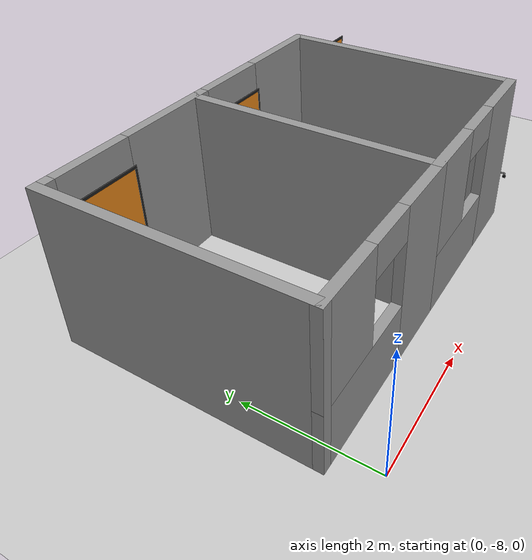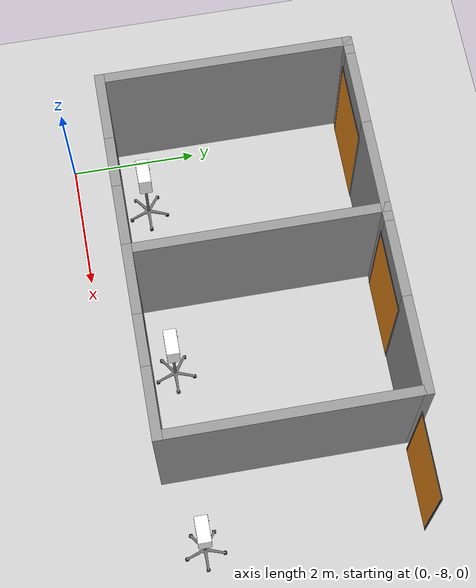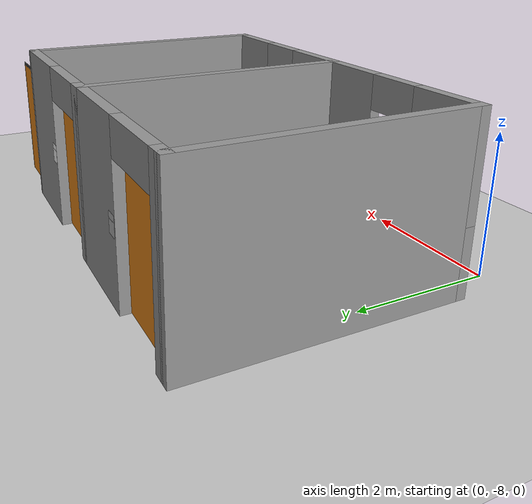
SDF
<sdf version="1.6">
 <world name="default">
  <model name="ground_plane">
   <static>1</static>
   <link name="link">
    <collision name="collision">
     <geometry><plane><normal>0 0 1</normal><size>100 100</size></plane></geometry>
     <surface><friction><ode><mu>100</mu><mu2>50</mu2></ode></friction></surface>
    </collision>
    <visual name="visual">
     <cast_shadows>0</cast_shadows>
     <geometry><plane><normal>0 0 1</normal><size>100 100</size></plane></geometry>
     <material>
      <script><uri>file://media/materials/scripts/gazebo.material</uri><name>Gazebo/Grey</name></script>
     </material>
    </visual>
   </link>
  </model>
  <model name="vitals_monitor_clone">
   <static>1</static>
   <link name="vitals_monitor">
    <collision name="vitals_monitor">
     <geometry><mesh><uri>model://vitals_monitor/meshes/model.dae</uri></mesh></geometry>
    </collision>
    <visual name="vitals_monitor_mesh">
     <geometry><mesh><uri>model://vitals_monitor/meshes/model.dae</uri></mesh></geometry>
    </visual>
   </link>
   <pose>6.64162 -6.89863 0 0 -0 3.14159</pose>
  </model>
  <model name="vitals_monitor_clone_0">
   <static>1</static>
   <link name="vitals_monitor">
    <collision name="vitals_monitor">
     <geometry><mesh><uri>model://vitals_monitor/meshes/model.dae</uri></mesh></geometry>
    </collision>
    <visual name="vitals_monitor_mesh">
     <geometry><mesh><uri>model://vitals_monitor/meshes/model.dae</uri></mesh></geometry>
    </visual>
   </link>
   <pose>3.79191 -6.89962 0 0 -0 3.14159</pose>
  </model>
  <model name="vitals_monitor_clone_1">
   <static>1</static>
   <link name="vitals_monitor">
    <collision name="vitals_monitor">
     <geometry><mesh><uri>model://vitals_monitor/meshes/model.dae</uri></mesh></geometry>
    </collision>
    <visual name="vitals_monitor_mesh">
     <geometry><mesh><uri>model://vitals_monitor/meshes/model.dae</uri></mesh></geometry>
    </visual>
   </link>
   <pose>0.94132 -6.89183 0 0 -0 3.14159</pose>
  </model>
  <model name="room_door_3">
   <link name="base_link">
    <inertial>
     <pose>0 0 1.00051 0 -0 0</pose>
     <mass>2001</mass>
     <inertia><ixx>797.85</ixx><ixy>0</ixy><ixz>0</ixz><iyy>4.0501</iyy><iyz>0</iyz><izz>796.8</izz></inertia>
    </inertial>
    <collision name="base_link_fixed_joint_lump__top_post_collision">
     <pose>0 0 2.025 0 -0 0</pose>
     <geometry><box><size>0.01 1.3 0.05</size></box></geometry>
    </collision>
    <collision name="base_link_fixed_joint_lump__left_post_collision_1">
     <pose>0 -0.63 1 0 -0 0</pose>
     <geometry><box><size>0.01 0.04 2</size></box></geometry>
    </collision>
    <collision name="base_link_fixed_joint_lump__right_post_collision_2">
     <pose>0 0.63 1 0 -0 0</pose>
     <geometry><box><size>0.01 0.04 2</size></box></geometry>
    </collision>
    <visual name="base_link_fixed_joint_lump__top_post_visual">
     <pose>0 0 2.025 0 -0 0</pose>
     <geometry><box><size>0.01 1.3 0.05</size></box></geometry>
     <material>
      <script><name>Gazebo/Black</name><uri>file://media/materials/scripts/gazebo.material</uri></script>
     </material>
    </visual>
    <visual name="base_link_fixed_joint_lump__left_post_visual_1">
     <pose>0 -0.63 1 0 -0 0</pose>
     <geometry><box><size>0.01 0.04 2</size></box></geometry>
     <material>
      <script><name>Gazebo/Black</name><uri>file://media/materials/scripts/gazebo.material</uri></script>
     </material>
    </visual>
    <visual name="base_link_fixed_joint_lump__right_post_visual_2">
     <pose>0 0.63 1 0 -0 0</pose>
     <geometry><box><size>0.01 0.04 2</size></box></geometry>
     <material>
      <script><name>Gazebo/Black</name><uri>file://media/materials/scripts/gazebo.material</uri></script>
     </material>
    </visual>
   </link>
   <link name="door_front">
    <pose>0.005 -0.61 1 0 -0 0</pose>
    <inertial>
     <mass>1</mass>
     <inertia><ixx>1</ixx><ixy>0</ixy><ixz>0</ixz><iyy>1</iyy><iyz>0</iyz><izz>1</izz></inertia>
    </inertial>
    <collision name="door_front_collision">
     <pose>-0.005 0.61 0.005 0 -0 0</pose>
     <geometry><box><size>0.01 1.22 1.99</size></box></geometry>
    </collision>
    <visual name="door_front_visual">
     <pose>-0.005 0.61 0.005 0 -0 0</pose>
     <geometry><box><size>0.01 1.22 1.99</size></box></geometry>
     <material>
      <script><name>Gazebo/Orange</name><uri>file://media/materials/scripts/gazebo.material</uri></script>
     </material>
    </visual>
   </link>
   <joint name="door_front_to_left_post" type="revolute">
    <child>door_front</child>
    <parent>base_link</parent>
    <axis>
     <xyz>0 0 1</xyz>
     <limit><lower>-3.14</lower><upper>0</upper><effort>1000</effort><velocity>100</velocity></limit>
     <dynamics>
      <damping>0.5</damping>
      <friction>0</friction>
      <spring_reference>0</spring_reference>
      <spring_stiffness>0</spring_stiffness>
     </dynamics>
     <use_parent_model_frame>0</use_parent_model_frame>
    </axis>
   </joint>
   <pose>0.553159 -3.55062 -1e-06 -1e-06 -0 -1.57102</pose>
  </model>
  <model name="room_door_3_clone">
   <link name="base_link">
    <inertial>
     <pose>0 0 1.00051 0 -0 0</pose>
     <mass>2001</mass>
     <inertia><ixx>797.85</ixx><ixy>0</ixy><ixz>0</ixz><iyy>4.0501</iyy><iyz>0</iyz><izz>796.8</izz></inertia>
    </inertial>
    <collision name="base_link_fixed_joint_lump__top_post_collision">
     <pose>0 0 2.025 0 -0 0</pose>
     <geometry><box><size>0.01 1.3 0.05</size></box></geometry>
    </collision>
    <collision name="base_link_fixed_joint_lump__left_post_collision_1">
     <pose>0 -0.63 1 0 -0 0</pose>
     <geometry><box><size>0.01 0.04 2</size></box></geometry>
    </collision>
    <collision name="base_link_fixed_joint_lump__right_post_collision_2">
     <pose>0 0.63 1 0 -0 0</pose>
     <geometry><box><size>0.01 0.04 2</size></box></geometry>
    </collision>
    <visual name="base_link_fixed_joint_lump__top_post_visual">
     <pose>0 0 2.025 0 -0 0</pose>
     <geometry><box><size>0.01 1.3 0.05</size></box></geometry>
     <material>
      <script><name>Gazebo/Black</name><uri>file://media/materials/scripts/gazebo.material</uri></script>
     </material>
    </visual>
    <visual name="base_link_fixed_joint_lump__left_post_visual_1">
     <pose>0 -0.63 1 0 -0 0</pose>
     <geometry><box><size>0.01 0.04 2</size></box></geometry>
     <material>
      <script><name>Gazebo/Black</name><uri>file://media/materials/scripts/gazebo.material</uri></script>
     </material>
    </visual>
    <visual name="base_link_fixed_joint_lump__right_post_visual_2">
     <pose>0 0.63 1 0 -0 0</pose>
     <geometry><box><size>0.01 0.04 2</size></box></geometry>
     <material>
      <script><name>Gazebo/Black</name><uri>file://media/materials/scripts/gazebo.material</uri></script>
     </material>
    </visual>
   </link>
   <link name="door_front">
    <pose>0.005 -0.61 1 0 -0 0</pose>
    <inertial>
     <mass>1</mass>
     <inertia><ixx>1</ixx><ixy>0</ixy><ixz>0</ixz><iyy>1</iyy><iyz>0</iyz><izz>1</izz></inertia>
    </inertial>
    <collision name="door_front_collision">
     <pose>-0.005 0.61 0.005 0 -0 0</pose>
     <geometry><box><size>0.01 1.22 1.99</size></box></geometry>
    </collision>
    <visual name="door_front_visual">
     <pose>-0.005 0.61 0.005 0 -0 0</pose>
     <geometry><box><size>0.01 1.22 1.99</size></box></geometry>
     <material>
      <script><name>Gazebo/Orange</name><uri>file://media/materials/scripts/gazebo.material</uri></script>
     </material>
    </visual>
   </link>
   <joint name="door_front_to_left_post" type="revolute">
    <child>door_front</child>
    <parent>base_link</parent>
    <axis>
     <xyz>0 0 1</xyz>
     <limit><lower>-3.14</lower><upper>0</upper><effort>1000</effort><velocity>100</velocity></limit>
     <dynamics>
      <damping>0.5</damping>
      <friction>0</friction>
      <spring_reference>0</spring_reference>
      <spring_stiffness>0</spring_stiffness>
     </dynamics>
     <use_parent_model_frame>0</use_parent_model_frame>
    </axis>
   </joint>
   <pose>3.41388 -3.55031 -1e-06 1e-06 -0 -1.5708</pose>
  </model>
  <model name="room_door_3_clone_clone">
   <link name="base_link">
    <inertial>
     <pose>0 0 1.00051 0 -0 0</pose>
     <mass>2001</mass>
     <inertia><ixx>797.85</ixx><ixy>0</ixy><ixz>0</ixz><iyy>4.0501</iyy><iyz>0</iyz><izz>796.8</izz></inertia>
    </inertial>
    <collision name="base_link_fixed_joint_lump__top_post_collision">
     <pose>0 0 2.025 0 -0 0</pose>
     <geometry><box><size>0.01 1.3 0.05</size></box></geometry>
    </collision>
    <collision name="base_link_fixed_joint_lump__left_post_collision_1">
     <pose>0 -0.63 1 0 -0 0</pose>
     <geometry><box><size>0.01 0.04 2</size></box></geometry>
    </collision>
    <collision name="base_link_fixed_joint_lump__right_post_collision_2">
     <pose>0 0.63 1 0 -0 0</pose>
     <geometry><box><size>0.01 0.04 2</size></box></geometry>
    </collision>
    <visual name="base_link_fixed_joint_lump__top_post_visual">
     <pose>0 0 2.025 0 -0 0</pose>
     <geometry><box><size>0.01 1.3 0.05</size></box></geometry>
     <material>
      <script><name>Gazebo/Black</name><uri>file://media/materials/scripts/gazebo.material</uri></script>
     </material>
    </visual>
    <visual name="base_link_fixed_joint_lump__left_post_visual_1">
     <pose>0 -0.63 1 0 -0 0</pose>
     <geometry><box><size>0.01 0.04 2</size></box></geometry>
     <material>
      <script><name>Gazebo/Black</name><uri>file://media/materials/scripts/gazebo.material</uri></script>
     </material>
    </visual>
    <visual name="base_link_fixed_joint_lump__right_post_visual_2">
     <pose>0 0.63 1 0 -0 0</pose>
     <geometry><box><size>0.01 0.04 2</size></box></geometry>
     <material>
      <script><name>Gazebo/Black</name><uri>file://media/materials/scripts/gazebo.material</uri></script>
     </material>
    </visual>
   </link>
   <link name="door_front">
    <pose>0.005 -0.61 1 0 -0 0</pose>
    <inertial>
     <mass>1</mass>
     <inertia><ixx>1</ixx><ixy>0</ixy><ixz>0</ixz><iyy>1</iyy><iyz>0</iyz><izz>1</izz></inertia>
    </inertial>
    <collision name="door_front_collision">
     <pose>-0.005 0.61 0.005 0 -0 0</pose>
     <geometry><box><size>0.01 1.22 1.99</size></box></geometry>
    </collision>
    <visual name="door_front_visual">
     <pose>-0.005 0.61 0.005 0 -0 0</pose>
     <geometry><box><size>0.01 1.22 1.99</size></box></geometry>
     <material>
      <script><name>Gazebo/Orange</name><uri>file://media/materials/scripts/gazebo.material</uri></script>
     </material>
    </visual>
   </link>
   <joint name="door_front_to_left_post" type="revolute">
    <child>door_front</child>
    <parent>base_link</parent>
    <axis>
     <xyz>0 0 1</xyz>
     <limit><lower>-3.14</lower><upper>0</upper><effort>1000</effort><velocity>100</velocity></limit>
     <dynamics>
      <damping>0.5</damping>
      <friction>0</friction>
      <spring_reference>0</spring_reference>
      <spring_stiffness>0</spring_stiffness>
     </dynamics>
     <use_parent_model_frame>0</use_parent_model_frame>
    </axis>
   </joint>
   <pose>6.26096 -3.5504 -2e-06 4e-06 -7e-06 -1.57077</pose>
  </model>
  <model name="info_plate">
   <static>1</static>
   <link name="info_plate">
    <collision name="info_plate">
     <pose>0 0 0.1485 0 -0 0</pose>
     <geometry><box><size>0.001 0.21 0.297</size></box></geometry>
    </collision>
    <visual name="info_plate_upper">
     <pose>0 0 0.2485 0 -0 0</pose>
     <geometry><box><size>0.001 0.21 0.097</size></box></geometry>
     <material>
      <script>
       <uri>model://info_plate/materials/scripts</uri>
       <uri>model://info_plate/materials/textures</uri>
       <name>Room/S1</name>
       <name>__default__</name>
      </script>
     </material>
    </visual>
    <visual name="info_plate_lower">
     <pose>0 0 0.105 0 -0 0</pose>
     <geometry><box><size>0.001 0.21 0.21</size></box></geometry>
     <material>
      <script>
       <uri>model://info_plate/materials/scripts</uri>
       <uri>model://info_plate/materials/textures</uri>
       <name>QR_Room/S1</name>
      </script>
     </material>
    </visual>
   </link>
   <pose>1.29234 -3.395 1 0 -0 1.57</pose>
  </model>
  <model name="info_plate_clone">
   <link name="info_plate">
    <inertial>
     <mass>1</mass>
     <inertia><ixx>1</ixx><ixy>0</ixy><ixz>0</ixz><iyy>1</iyy><iyz>0</iyz><izz>1</izz></inertia>
    </inertial>
    <visual name="info_plate_upper">
     <pose>0 0 0.2485 0 -0 0</pose>
     <geometry><box><size>0.001 0.21 0.097</size></box></geometry>
     <material>
      <script>
       <uri>model://info_plate/materials/scripts</uri>
       <uri>model://info_plate/materials/textures</uri>
       <name>Room/S2</name>
       <name>__default__</name>
      </script>
      <shader type="vertex"><normal_map>__default__</normal_map></shader>
      <ambient>1 1 1 1</ambient>
      <diffuse>1 1 1 1</diffuse>
      <specular>0 0 0 1</specular>
      <emissive>0 0 0 1</emissive>
     </material>
    </visual>
    <visual name="info_plate_lower">
     <pose>0 0 0.105 0 -0 0</pose>
     <geometry><box><size>0.001 0.21 0.21</size></box></geometry>
     <material>
      <script>
       <uri>model://info_plate/materials/scripts</uri>
       <uri>model://info_plate/materials/textures</uri>
       <name>QR_Room/S2</name>
      </script>
      <shader type="vertex"><normal_map>__default__</normal_map></shader>
      <ambient>1 1 1 1</ambient>
      <diffuse>1 1 1 1</diffuse>
      <specular>0 0 0 1</specular>
      <emissive>0 0 0 1</emissive>
     </material>
    </visual>
    <collision name="info_plate">
     <pose>0 0 0.1485 0 -0 0</pose>
     <geometry><box><size>0.001 0.21 0.297</size></box></geometry>
     <surface>
      <friction>
       <ode><mu>1</mu><mu2>1</mu2><fdir1>0 0 0</fdir1><slip1>0</slip1><slip2>0</slip2></ode>
       <torsional>
        <coefficient>1</coefficient>
        <patch_radius>0</patch_radius>
        <surface_radius>0</surface_radius>
        <use_patch_radius>1</use_patch_radius>
        <ode><slip>0</slip></ode>
       </torsional>
      </friction>
      <bounce><restitution_coefficient>0</restitution_coefficient><threshold>1e+06</threshold></bounce>
      <contact>
       <collide_without_contact>0</collide_without_contact>
       <collide_without_contact_bitmask>1</collide_without_contact_bitmask>
       <collide_bitmask>1</collide_bitmask>
       <ode>
        <soft_cfm>0</soft_cfm>
        <soft_erp>0.2</soft_erp>
        <kp>1e+13</kp>
        <kd>1</kd>
        <max_vel>0.01</max_vel>
        <min_depth>0</min_depth>
       </ode>
       <bullet>
        <split_impulse>1</split_impulse>
        <split_impulse_penetration_threshold>-0.01</split_impulse_penetration_threshold>
        <soft_cfm>0</soft_cfm>
        <soft_erp>0.2</soft_erp>
        <kp>1e+13</kp>
        <kd>1</kd>
       </bullet>
      </contact>
     </surface>
    </collision>
   </link>
   <static>1</static>
   <pose>4.1207 -3.395 1 0 -0 1.57</pose>
  </model>
  <model name="hospital_walls">
   <link name="Wall_35">
    <pose>5.425 -5.35 0 0 -0 1.5708</pose>
    <visual name="Wall_35_Visual">
     <pose>0 0 1.25 0 -0 0</pose>
     <geometry><box><size>4 0.15 2.5</size></box></geometry>
     <material>
      <script><uri>file://media/materials/scripts/gazebo.material</uri><name>Gazebo/Grey</name></script>
      <ambient>1 1 1 1</ambient>
      <shader type="pixel"/>
     </material>
     <meta><layer>0</layer></meta>
    </visual>
    <collision name="Wall_35_Collision">
     <pose>0 0 1.25 0 -0 0</pose>
     <geometry><box><size>4 0.15 2.5</size></box></geometry>
     <surface>
      <friction>
       <ode><mu>1</mu><mu2>1</mu2><fdir1>0 0 0</fdir1><slip1>0</slip1><slip2>0</slip2></ode>
       <torsional>
        <coefficient>1</coefficient>
        <patch_radius>0</patch_radius>
        <surface_radius>0</surface_radius>
        <use_patch_radius>1</use_patch_radius>
        <ode><slip>0</slip></ode>
       </torsional>
      </friction>
      <bounce><restitution_coefficient>0</restitution_coefficient><threshold>1e+06</threshold></bounce>
      <contact>
       <collide_without_contact>0</collide_without_contact>
       <collide_without_contact_bitmask>1</collide_without_contact_bitmask>
       <collide_bitmask>1</collide_bitmask>
       <ode>
        <soft_cfm>0</soft_cfm>
        <soft_erp>0.2</soft_erp>
        <kp>1e+13</kp>
        <kd>1</kd>
        <max_vel>0.01</max_vel>
        <min_depth>0</min_depth>
       </ode>
       <bullet>
        <split_impulse>1</split_impulse>
        <split_impulse_penetration_threshold>-0.01</split_impulse_penetration_threshold>
        <soft_cfm>0</soft_cfm>
        <soft_erp>0.2</soft_erp>
        <kp>1e+13</kp>
        <kd>1</kd>
       </bullet>
      </contact>
     </surface>
    </collision>
   </link>
   <link name="Wall_38">
    <pose>4 -7.275 0 0 -0 3.14159</pose>
    <inertial>
     <mass>1</mass>
     <inertia><ixx>1</ixx><ixy>0</ixy><ixz>0</ixz><iyy>1</iyy><iyz>0</iyz><izz>1</izz></inertia>
    </inertial>
    <visual name="Wall_38_Visual_0">
     <pose>-0.95 0 1.25 0 -0 0</pose>
     <geometry><box><size>1.1 0.15 2.5</size></box></geometry>
     <material>
      <script><uri>file://media/materials/scripts/gazebo.material</uri><name>Gazebo/Grey</name></script>
      <ambient>1 1 1 1</ambient>
      <shader type="vertex"><normal_map>__default__</normal_map></shader>
      <diffuse>0.7 0.7 0.7 1</diffuse>
      <specular>0.01 0.01 0.01 1</specular>
      <emissive>0 0 0 1</emissive>
     </material>
     <meta><layer>0</layer></meta>
    </visual>
    <visual name="Wall_38_Visual_3">
     <pose>0 0 2.25 0 -0 0</pose>
     <geometry><box><size>0.8 0.15 0.5</size></box></geometry>
     <material>
      <script><uri>file://media/materials/scripts/gazebo.material</uri><name>Gazebo/Grey</name></script>
      <ambient>1 1 1 1</ambient>
      <shader type="vertex"><normal_map>__default__</normal_map></shader>
      <diffuse>0.7 0.7 0.7 1</diffuse>
      <specular>0.01 0.01 0.01 1</specular>
      <emissive>0 0 0 1</emissive>
     </material>
     <meta><layer>0</layer></meta>
    </visual>
    <visual name="Wall_38_Visual_1">
     <pose>0.55 0 0.5 0 -0 0</pose>
     <geometry><box><size>1.9 0.15 1</size></box></geometry>
     <material>
      <script><uri>file://media/materials/scripts/gazebo.material</uri><name>Gazebo/Grey</name></script>
      <ambient>1 1 1 1</ambient>
      <shader type="vertex"><normal_map>__default__</normal_map></shader>
      <diffuse>0.7 0.7 0.7 1</diffuse>
      <specular>0.01 0.01 0.01 1</specular>
      <emissive>0 0 0 1</emissive>
     </material>
     <meta><layer>0</layer></meta>
    </visual>
    <visual name="Wall_38_Visual_2">
     <pose>0.95 0 1.75 0 -0 0</pose>
     <geometry><box><size>1.1 0.15 1.5</size></box></geometry>
     <material>
      <script><uri>file://media/materials/scripts/gazebo.material</uri><name>Gazebo/Grey</name></script>
      <ambient>1 1 1 1</ambient>
      <shader type="vertex"><normal_map>__default__</normal_map></shader>
      <diffuse>0.7 0.7 0.7 1</diffuse>
      <specular>0.01 0.01 0.01 1</specular>
      <emissive>0 0 0 1</emissive>
     </material>
     <meta><layer>0</layer></meta>
    </visual>
    <collision name="Wall_38_Collision_3">
     <pose>0 0 2.25 0 -0 0</pose>
     <geometry><box><size>0.8 0.15 0.5</size></box></geometry>
     <surface>
      <friction>
       <ode><mu>1</mu><mu2>1</mu2><fdir1>0 0 0</fdir1><slip1>0</slip1><slip2>0</slip2></ode>
       <torsional>
        <coefficient>1</coefficient>
        <patch_radius>0</patch_radius>
        <surface_radius>0</surface_radius>
        <use_patch_radius>1</use_patch_radius>
        <ode><slip>0</slip></ode>
       </torsional>
      </friction>
      <bounce><restitution_coefficient>0</restitution_coefficient><threshold>1e+06</threshold></bounce>
      <contact>
       <collide_without_contact>0</collide_without_contact>
       <collide_without_contact_bitmask>1</collide_without_contact_bitmask>
       <collide_bitmask>1</collide_bitmask>
       <ode>
        <soft_cfm>0</soft_cfm>
        <soft_erp>0.2</soft_erp>
        <kp>1e+13</kp>
        <kd>1</kd>
        <max_vel>0.01</max_vel>
        <min_depth>0</min_depth>
       </ode>
       <bullet>
        <split_impulse>1</split_impulse>
        <split_impulse_penetration_threshold>-0.01</split_impulse_penetration_threshold>
        <soft_cfm>0</soft_cfm>
        <soft_erp>0.2</soft_erp>
        <kp>1e+13</kp>
        <kd>1</kd>
       </bullet>
      </contact>
     </surface>
    </collision>
    <collision name="Wall_38_Collision_0">
     <pose>-0.95 0 1.25 0 -0 0</pose>
     <geometry><box><size>1.1 0.15 2.5</size></box></geometry>
     <surface>
      <friction>
       <ode><mu>1</mu><mu2>1</mu2><fdir1>0 0 0</fdir1><slip1>0</slip1><slip2>0</slip2></ode>
       <torsional>
        <coefficient>1</coefficient>
        <patch_radius>0</patch_radius>
        <surface_radius>0</surface_radius>
        <use_patch_radius>1</use_patch_radius>
        <ode><slip>0</slip></ode>
       </torsional>
      </friction>
      <bounce><restitution_coefficient>0</restitution_coefficient><threshold>1e+06</threshold></bounce>
      <contact>
       <collide_without_contact>0</collide_without_contact>
       <collide_without_contact_bitmask>1</collide_without_contact_bitmask>
       <collide_bitmask>1</collide_bitmask>
       <ode>
        <soft_cfm>0</soft_cfm>
        <soft_erp>0.2</soft_erp>
        <kp>1e+13</kp>
        <kd>1</kd>
        <max_vel>0.01</max_vel>
        <min_depth>0</min_depth>
       </ode>
       <bullet>
        <split_impulse>1</split_impulse>
        <split_impulse_penetration_threshold>-0.01</split_impulse_penetration_threshold>
        <soft_cfm>0</soft_cfm>
        <soft_erp>0.2</soft_erp>
        <kp>1e+13</kp>
        <kd>1</kd>
       </bullet>
      </contact>
     </surface>
    </collision>
    <collision name="Wall_38_Collision_2">
     <pose>0.95 0 1.75 0 -0 0</pose>
     <geometry><box><size>1.1 0.15 1.5</size></box></geometry>
     <surface>
      <friction>
       <ode><mu>1</mu><mu2>1</mu2><fdir1>0 0 0</fdir1><slip1>0</slip1><slip2>0</slip2></ode>
       <torsional>
        <coefficient>1</coefficient>
        <patch_radius>0</patch_radius>
        <surface_radius>0</surface_radius>
        <use_patch_radius>1</use_patch_radius>
        <ode><slip>0</slip></ode>
       </torsional>
      </friction>
      <bounce><restitution_coefficient>0</restitution_coefficient><threshold>1e+06</threshold></bounce>
      <contact>
       <collide_without_contact>0</collide_without_contact>
       <collide_without_contact_bitmask>1</collide_without_contact_bitmask>
       <collide_bitmask>1</collide_bitmask>
       <ode>
        <soft_cfm>0</soft_cfm>
        <soft_erp>0.2</soft_erp>
        <kp>1e+13</kp>
        <kd>1</kd>
        <max_vel>0.01</max_vel>
        <min_depth>0</min_depth>
       </ode>
       <bullet>
        <split_impulse>1</split_impulse>
        <split_impulse_penetration_threshold>-0.01</split_impulse_penetration_threshold>
        <soft_cfm>0</soft_cfm>
        <soft_erp>0.2</soft_erp>
        <kp>1e+13</kp>
        <kd>1</kd>
       </bullet>
      </contact>
     </surface>
    </collision>
    <collision name="Wall_38_Collision_1">
     <pose>0.55 0 0.5 0 -0 0</pose>
     <geometry><box><size>1.9 0.15 1</size></box></geometry>
     <surface>
      <friction>
       <ode><mu>1</mu><mu2>1</mu2><fdir1>0 0 0</fdir1><slip1>0</slip1><slip2>0</slip2></ode>
       <torsional>
        <coefficient>1</coefficient>
        <patch_radius>0</patch_radius>
        <surface_radius>0</surface_radius>
        <use_patch_radius>1</use_patch_radius>
        <ode><slip>0</slip></ode>
       </torsional>
      </friction>
      <bounce><restitution_coefficient>0</restitution_coefficient><threshold>1e+06</threshold></bounce>
      <contact>
       <collide_without_contact>0</collide_without_contact>
       <collide_without_contact_bitmask>1</collide_without_contact_bitmask>
       <collide_bitmask>1</collide_bitmask>
       <ode>
        <soft_cfm>0</soft_cfm>
        <soft_erp>0.2</soft_erp>
        <kp>1e+13</kp>
        <kd>1</kd>
        <max_vel>0.01</max_vel>
        <min_depth>0</min_depth>
       </ode>
       <bullet>
        <split_impulse>1</split_impulse>
        <split_impulse_penetration_threshold>-0.01</split_impulse_penetration_threshold>
        <soft_cfm>0</soft_cfm>
        <soft_erp>0.2</soft_erp>
        <kp>1e+13</kp>
        <kd>1</kd>
       </bullet>
      </contact>
     </surface>
    </collision>
   </link>
   <link name="Wall_39">
    <pose>2.575 -5.35 0 0 -0 1.5708</pose>
    <visual name="Wall_39_Visual">
     <pose>0 0 1.25 0 -0 0</pose>
     <geometry><box><size>4 0.15 2.5</size></box></geometry>
     <material>
      <script><uri>file://media/materials/scripts/gazebo.material</uri><name>Gazebo/Grey</name></script>
      <ambient>1 1 1 1</ambient>
      <shader type="pixel"/>
     </material>
     <meta><layer>0</layer></meta>
    </visual>
    <collision name="Wall_39_Collision">
     <pose>0 0 1.25 0 -0 0</pose>
     <geometry><box><size>4 0.15 2.5</size></box></geometry>
     <surface>
      <friction>
       <ode><mu>1</mu><mu2>1</mu2><fdir1>0 0 0</fdir1><slip1>0</slip1><slip2>0</slip2></ode>
       <torsional>
        <coefficient>1</coefficient>
        <patch_radius>0</patch_radius>
        <surface_radius>0</surface_radius>
        <use_patch_radius>1</use_patch_radius>
        <ode><slip>0</slip></ode>
       </torsional>
      </friction>
      <bounce><restitution_coefficient>0</restitution_coefficient><threshold>1e+06</threshold></bounce>
      <contact>
       <collide_without_contact>0</collide_without_contact>
       <collide_without_contact_bitmask>1</collide_without_contact_bitmask>
       <collide_bitmask>1</collide_bitmask>
       <ode>
        <soft_cfm>0</soft_cfm>
        <soft_erp>0.2</soft_erp>
        <kp>1e+13</kp>
        <kd>1</kd>
        <max_vel>0.01</max_vel>
        <min_depth>0</min_depth>
       </ode>
       <bullet>
        <split_impulse>1</split_impulse>
        <split_impulse_penetration_threshold>-0.01</split_impulse_penetration_threshold>
        <soft_cfm>0</soft_cfm>
        <soft_erp>0.2</soft_erp>
        <kp>1e+13</kp>
        <kd>1</kd>
       </bullet>
      </contact>
     </surface>
    </collision>
   </link>
   <link name="Wall_40">
    <pose>4 -3.425 0 0 -0 0</pose>
    <visual name="Wall_40_Visual_2">
     <pose>-0.6 0 2.25 0 -0 0</pose>
     <geometry><box><size>1.2 0.15 0.5</size></box></geometry>
     <material>
      <script><uri>file://media/materials/scripts/gazebo.material</uri><name>Gazebo/Grey</name></script>
      <ambient>1 1 1 1</ambient>
      <shader type="pixel"/>
     </material>
     <meta><layer>0</layer></meta>
    </visual>
    <visual name="Wall_40_Visual_0">
     <pose>-1.35 0 1.25 0 -0 0</pose>
     <geometry><box><size>0.3 0.15 2.5</size></box></geometry>
     <material>
      <script><uri>file://media/materials/scripts/gazebo.material</uri><name>Gazebo/Grey</name></script>
      <ambient>1 1 1 1</ambient>
      <shader type="pixel"/>
     </material>
     <meta><layer>0</layer></meta>
    </visual>
    <visual name="Wall_40_Visual_1">
     <pose>0.75 0 1.25 0 -0 0</pose>
     <geometry><box><size>1.5 0.15 2.5</size></box></geometry>
     <material>
      <script><uri>file://media/materials/scripts/gazebo.material</uri><name>Gazebo/Grey</name></script>
      <ambient>1 1 1 1</ambient>
      <shader type="pixel"/>
     </material>
     <meta><layer>0</layer></meta>
    </visual>
    <collision name="Wall_40_Collision_2">
     <pose>-0.6 0 2.25 0 -0 0</pose>
     <geometry><box><size>1.2 0.15 0.5</size></box></geometry>
     <surface>
      <friction>
       <ode><mu>1</mu><mu2>1</mu2><fdir1>0 0 0</fdir1><slip1>0</slip1><slip2>0</slip2></ode>
       <torsional>
        <coefficient>1</coefficient>
        <patch_radius>0</patch_radius>
        <surface_radius>0</surface_radius>
        <use_patch_radius>1</use_patch_radius>
        <ode><slip>0</slip></ode>
       </torsional>
      </friction>
      <bounce><restitution_coefficient>0</restitution_coefficient><threshold>1e+06</threshold></bounce>
      <contact>
       <collide_without_contact>0</collide_without_contact>
       <collide_without_contact_bitmask>1</collide_without_contact_bitmask>
       <collide_bitmask>1</collide_bitmask>
       <ode>
        <soft_cfm>0</soft_cfm>
        <soft_erp>0.2</soft_erp>
        <kp>1e+13</kp>
        <kd>1</kd>
        <max_vel>0.01</max_vel>
        <min_depth>0</min_depth>
       </ode>
       <bullet>
        <split_impulse>1</split_impulse>
        <split_impulse_penetration_threshold>-0.01</split_impulse_penetration_threshold>
        <soft_cfm>0</soft_cfm>
        <soft_erp>0.2</soft_erp>
        <kp>1e+13</kp>
        <kd>1</kd>
       </bullet>
      </contact>
     </surface>
    </collision>
    <collision name="Wall_40_Collision_0">
     <pose>-1.35 0 1.25 0 -0 0</pose>
     <geometry><box><size>0.3 0.15 2.5</size></box></geometry>
     <surface>
      <friction>
       <ode><mu>1</mu><mu2>1</mu2><fdir1>0 0 0</fdir1><slip1>0</slip1><slip2>0</slip2></ode>
       <torsional>
        <coefficient>1</coefficient>
        <patch_radius>0</patch_radius>
        <surface_radius>0</surface_radius>
        <use_patch_radius>1</use_patch_radius>
        <ode><slip>0</slip></ode>
       </torsional>
      </friction>
      <bounce><restitution_coefficient>0</restitution_coefficient><threshold>1e+06</threshold></bounce>
      <contact>
       <collide_without_contact>0</collide_without_contact>
       <collide_without_contact_bitmask>1</collide_without_contact_bitmask>
       <collide_bitmask>1</collide_bitmask>
       <ode>
        <soft_cfm>0</soft_cfm>
        <soft_erp>0.2</soft_erp>
        <kp>1e+13</kp>
        <kd>1</kd>
        <max_vel>0.01</max_vel>
        <min_depth>0</min_depth>
       </ode>
       <bullet>
        <split_impulse>1</split_impulse>
        <split_impulse_penetration_threshold>-0.01</split_impulse_penetration_threshold>
        <soft_cfm>0</soft_cfm>
        <soft_erp>0.2</soft_erp>
        <kp>1e+13</kp>
        <kd>1</kd>
       </bullet>
      </contact>
     </surface>
    </collision>
    <collision name="Wall_40_Collision_1">
     <pose>0.75 0 1.25 0 -0 0</pose>
     <geometry><box><size>1.5 0.15 2.5</size></box></geometry>
     <surface>
      <friction>
       <ode><mu>1</mu><mu2>1</mu2><fdir1>0 0 0</fdir1><slip1>0</slip1><slip2>0</slip2></ode>
       <torsional>
        <coefficient>1</coefficient>
        <patch_radius>0</patch_radius>
        <surface_radius>0</surface_radius>
        <use_patch_radius>1</use_patch_radius>
        <ode><slip>0</slip></ode>
       </torsional>
      </friction>
      <bounce><restitution_coefficient>0</restitution_coefficient><threshold>1e+06</threshold></bounce>
      <contact>
       <collide_without_contact>0</collide_without_contact>
       <collide_without_contact_bitmask>1</collide_without_contact_bitmask>
       <collide_bitmask>1</collide_bitmask>
       <ode>
        <soft_cfm>0</soft_cfm>
        <soft_erp>0.2</soft_erp>
        <kp>1e+13</kp>
        <kd>1</kd>
        <max_vel>0.01</max_vel>
        <min_depth>0</min_depth>
       </ode>
       <bullet>
        <split_impulse>1</split_impulse>
        <split_impulse_penetration_threshold>-0.01</split_impulse_penetration_threshold>
        <soft_cfm>0</soft_cfm>
        <soft_erp>0.2</soft_erp>
        <kp>1e+13</kp>
        <kd>1</kd>
       </bullet>
      </contact>
     </surface>
    </collision>
   </link>
   <link name="Wall_42">
    <pose>1.15 -7.275 0 0 -0 3.14159</pose>
    <inertial>
     <mass>1</mass>
     <inertia><ixx>1</ixx><ixy>0</ixy><ixz>0</ixz><iyy>1</iyy><iyz>0</iyz><izz>1</izz></inertia>
    </inertial>
    <visual name="Wall_42_Visual_3">
     <pose>0 0 2.25 0 -0 0</pose>
     <geometry><box><size>0.8 0.15 0.5</size></box></geometry>
     <material>
      <script><uri>file://media/materials/scripts/gazebo.material</uri><name>Gazebo/Grey</name></script>
      <ambient>1 1 1 1</ambient>
      <shader type="vertex"><normal_map>__default__</normal_map></shader>
      <diffuse>0.7 0.7 0.7 1</diffuse>
      <specular>0.01 0.01 0.01 1</specular>
      <emissive>0 0 0 1</emissive>
     </material>
     <meta><layer>0</layer></meta>
    </visual>
    <visual name="Wall_42_Visual_2">
     <pose>0.95 0 1.75 0 -0 0</pose>
     <geometry><box><size>1.1 0.15 1.5</size></box></geometry>
     <material>
      <script><uri>file://media/materials/scripts/gazebo.material</uri><name>Gazebo/Grey</name></script>
      <ambient>1 1 1 1</ambient>
      <shader type="vertex"><normal_map>__default__</normal_map></shader>
      <diffuse>0.7 0.7 0.7 1</diffuse>
      <specular>0.01 0.01 0.01 1</specular>
      <emissive>0 0 0 1</emissive>
     </material>
     <meta><layer>0</layer></meta>
    </visual>
    <visual name="Wall_42_Visual_1">
     <pose>0.55 0 0.5 0 -0 0</pose>
     <geometry><box><size>1.9 0.15 1</size></box></geometry>
     <material>
      <script><uri>file://media/materials/scripts/gazebo.material</uri><name>Gazebo/Grey</name></script>
      <ambient>1 1 1 1</ambient>
      <shader type="vertex"><normal_map>__default__</normal_map></shader>
      <diffuse>0.7 0.7 0.7 1</diffuse>
      <specular>0.01 0.01 0.01 1</specular>
      <emissive>0 0 0 1</emissive>
     </material>
     <meta><layer>0</layer></meta>
    </visual>
    <visual name="Wall_42_Visual_0">
     <pose>-0.95 0 1.25 0 -0 0</pose>
     <geometry><box><size>1.1 0.15 2.5</size></box></geometry>
     <material>
      <script><uri>file://media/materials/scripts/gazebo.material</uri><name>Gazebo/Grey</name></script>
      <ambient>1 1 1 1</ambient>
      <shader type="vertex"><normal_map>__default__</normal_map></shader>
      <diffuse>0.7 0.7 0.7 1</diffuse>
      <specular>0.01 0.01 0.01 1</specular>
      <emissive>0 0 0 1</emissive>
     </material>
     <meta><layer>0</layer></meta>
    </visual>
    <collision name="Wall_42_Collision_1">
     <pose>0.55 0 0.5 0 -0 0</pose>
     <geometry><box><size>1.9 0.15 1</size></box></geometry>
     <surface>
      <friction>
       <ode><mu>1</mu><mu2>1</mu2><fdir1>0 0 0</fdir1><slip1>0</slip1><slip2>0</slip2></ode>
       <torsional>
        <coefficient>1</coefficient>
        <patch_radius>0</patch_radius>
        <surface_radius>0</surface_radius>
        <use_patch_radius>1</use_patch_radius>
        <ode><slip>0</slip></ode>
       </torsional>
      </friction>
      <bounce><restitution_coefficient>0</restitution_coefficient><threshold>1e+06</threshold></bounce>
      <contact>
       <collide_without_contact>0</collide_without_contact>
       <collide_without_contact_bitmask>1</collide_without_contact_bitmask>
       <collide_bitmask>1</collide_bitmask>
       <ode>
        <soft_cfm>0</soft_cfm>
        <soft_erp>0.2</soft_erp>
        <kp>1e+13</kp>
        <kd>1</kd>
        <max_vel>0.01</max_vel>
        <min_depth>0</min_depth>
       </ode>
       <bullet>
        <split_impulse>1</split_impulse>
        <split_impulse_penetration_threshold>-0.01</split_impulse_penetration_threshold>
        <soft_cfm>0</soft_cfm>
        <soft_erp>0.2</soft_erp>
        <kp>1e+13</kp>
        <kd>1</kd>
       </bullet>
      </contact>
     </surface>
    </collision>
    <collision name="Wall_42_Collision_2">
     <pose>0.95 0 1.75 0 -0 0</pose>
     <geometry><box><size>1.1 0.15 1.5</size></box></geometry>
     <surface>
      <friction>
       <ode><mu>1</mu><mu2>1</mu2><fdir1>0 0 0</fdir1><slip1>0</slip1><slip2>0</slip2></ode>
       <torsional>
        <coefficient>1</coefficient>
        <patch_radius>0</patch_radius>
        <surface_radius>0</surface_radius>
        <use_patch_radius>1</use_patch_radius>
        <ode><slip>0</slip></ode>
       </torsional>
      </friction>
      <bounce><restitution_coefficient>0</restitution_coefficient><threshold>1e+06</threshold></bounce>
      <contact>
       <collide_without_contact>0</collide_without_contact>
       <collide_without_contact_bitmask>1</collide_without_contact_bitmask>
       <collide_bitmask>1</collide_bitmask>
       <ode>
        <soft_cfm>0</soft_cfm>
        <soft_erp>0.2</soft_erp>
        <kp>1e+13</kp>
        <kd>1</kd>
        <max_vel>0.01</max_vel>
        <min_depth>0</min_depth>
       </ode>
       <bullet>
        <split_impulse>1</split_impulse>
        <split_impulse_penetration_threshold>-0.01</split_impulse_penetration_threshold>
        <soft_cfm>0</soft_cfm>
        <soft_erp>0.2</soft_erp>
        <kp>1e+13</kp>
        <kd>1</kd>
       </bullet>
      </contact>
     </surface>
    </collision>
    <collision name="Wall_42_Collision_0">
     <pose>-0.95 0 1.25 0 -0 0</pose>
     <geometry><box><size>1.1 0.15 2.5</size></box></geometry>
     <surface>
      <friction>
       <ode><mu>1</mu><mu2>1</mu2><fdir1>0 0 0</fdir1><slip1>0</slip1><slip2>0</slip2></ode>
       <torsional>
        <coefficient>1</coefficient>
        <patch_radius>0</patch_radius>
        <surface_radius>0</surface_radius>
        <use_patch_radius>1</use_patch_radius>
        <ode><slip>0</slip></ode>
       </torsional>
      </friction>
      <bounce><restitution_coefficient>0</restitution_coefficient><threshold>1e+06</threshold></bounce>
      <contact>
       <collide_without_contact>0</collide_without_contact>
       <collide_without_contact_bitmask>1</collide_without_contact_bitmask>
       <collide_bitmask>1</collide_bitmask>
       <ode>
        <soft_cfm>0</soft_cfm>
        <soft_erp>0.2</soft_erp>
        <kp>1e+13</kp>
        <kd>1</kd>
        <max_vel>0.01</max_vel>
        <min_depth>0</min_depth>
       </ode>
       <bullet>
        <split_impulse>1</split_impulse>
        <split_impulse_penetration_threshold>-0.01</split_impulse_penetration_threshold>
        <soft_cfm>0</soft_cfm>
        <soft_erp>0.2</soft_erp>
        <kp>1e+13</kp>
        <kd>1</kd>
       </bullet>
      </contact>
     </surface>
    </collision>
    <collision name="Wall_42_Collision_3">
     <pose>0 0 2.25 0 -0 0</pose>
     <geometry><box><size>0.8 0.15 0.5</size></box></geometry>
     <surface>
      <friction>
       <ode><mu>1</mu><mu2>1</mu2><fdir1>0 0 0</fdir1><slip1>0</slip1><slip2>0</slip2></ode>
       <torsional>
        <coefficient>1</coefficient>
        <patch_radius>0</patch_radius>
        <surface_radius>0</surface_radius>
        <use_patch_radius>1</use_patch_radius>
        <ode><slip>0</slip></ode>
       </torsional>
      </friction>
      <bounce><restitution_coefficient>0</restitution_coefficient><threshold>1e+06</threshold></bounce>
      <contact>
       <collide_without_contact>0</collide_without_contact>
       <collide_without_contact_bitmask>1</collide_without_contact_bitmask>
       <collide_bitmask>1</collide_bitmask>
       <ode>
        <soft_cfm>0</soft_cfm>
        <soft_erp>0.2</soft_erp>
        <kp>1e+13</kp>
        <kd>1</kd>
        <max_vel>0.01</max_vel>
        <min_depth>0</min_depth>
       </ode>
       <bullet>
        <split_impulse>1</split_impulse>
        <split_impulse_penetration_threshold>-0.01</split_impulse_penetration_threshold>
        <soft_cfm>0</soft_cfm>
        <soft_erp>0.2</soft_erp>
        <kp>1e+13</kp>
        <kd>1</kd>
       </bullet>
      </contact>
     </surface>
    </collision>
   </link>
   <link name="Wall_43">
    <pose>-0.275 -5.35 0 0 -0 1.5708</pose>
    <visual name="Wall_43_Visual">
     <pose>0 0 1.25 0 -0 0</pose>
     <geometry><box><size>4 0.15 2.5</size></box></geometry>
     <material>
      <script><uri>file://media/materials/scripts/gazebo.material</uri><name>Gazebo/Grey</name></script>
      <ambient>1 1 1 1</ambient>
      <shader type="pixel"/>
     </material>
     <meta><layer>0</layer></meta>
    </visual>
    <collision name="Wall_43_Collision">
     <pose>0 0 1.25 0 -0 0</pose>
     <geometry><box><size>4 0.15 2.5</size></box></geometry>
     <surface>
      <friction>
       <ode><mu>1</mu><mu2>1</mu2><fdir1>0 0 0</fdir1><slip1>0</slip1><slip2>0</slip2></ode>
       <torsional>
        <coefficient>1</coefficient>
        <patch_radius>0</patch_radius>
        <surface_radius>0</surface_radius>
        <use_patch_radius>1</use_patch_radius>
        <ode><slip>0</slip></ode>
       </torsional>
      </friction>
      <bounce><restitution_coefficient>0</restitution_coefficient><threshold>1e+06</threshold></bounce>
      <contact>
       <collide_without_contact>0</collide_without_contact>
       <collide_without_contact_bitmask>1</collide_without_contact_bitmask>
       <collide_bitmask>1</collide_bitmask>
       <ode>
        <soft_cfm>0</soft_cfm>
        <soft_erp>0.2</soft_erp>
        <kp>1e+13</kp>
        <kd>1</kd>
        <max_vel>0.01</max_vel>
        <min_depth>0</min_depth>
       </ode>
       <bullet>
        <split_impulse>1</split_impulse>
        <split_impulse_penetration_threshold>-0.01</split_impulse_penetration_threshold>
        <soft_cfm>0</soft_cfm>
        <soft_erp>0.2</soft_erp>
        <kp>1e+13</kp>
        <kd>1</kd>
       </bullet>
      </contact>
     </surface>
    </collision>
   </link>
   <link name="Wall_44">
    <pose>1.15 -3.425 0 0 -0 0</pose>
    <visual name="Wall_44_Visual_1">
     <pose>0.75 0 1.25 0 -0 0</pose>
     <geometry><box><size>1.5 0.15 2.5</size></box></geometry>
     <material>
      <script><uri>file://media/materials/scripts/gazebo.material</uri><name>Gazebo/Grey</name></script>
      <ambient>1 1 1 1</ambient>
      <shader type="pixel"/>
     </material>
     <meta><layer>0</layer></meta>
    </visual>
    <visual name="Wall_44_Visual_2">
     <pose>-0.6 0 2.25 0 -0 0</pose>
     <geometry><box><size>1.2 0.15 0.5</size></box></geometry>
     <material>
      <script><uri>file://media/materials/scripts/gazebo.material</uri><name>Gazebo/Grey</name></script>
      <ambient>1 1 1 1</ambient>
      <shader type="pixel"/>
     </material>
     <meta><layer>0</layer></meta>
    </visual>
    <visual name="Wall_44_Visual_0">
     <pose>-1.35 0 1.25 0 -0 0</pose>
     <geometry><box><size>0.3 0.15 2.5</size></box></geometry>
     <material>
      <script><uri>file://media/materials/scripts/gazebo.material</uri><name>Gazebo/Grey</name></script>
      <ambient>1 1 1 1</ambient>
      <shader type="pixel"/>
     </material>
     <meta><layer>0</layer></meta>
    </visual>
    <collision name="Wall_44_Collision_2">
     <pose>-0.6 0 2.25 0 -0 0</pose>
     <geometry><box><size>1.2 0.15 0.5</size></box></geometry>
     <surface>
      <friction>
       <ode><mu>1</mu><mu2>1</mu2><fdir1>0 0 0</fdir1><slip1>0</slip1><slip2>0</slip2></ode>
       <torsional>
        <coefficient>1</coefficient>
        <patch_radius>0</patch_radius>
        <surface_radius>0</surface_radius>
        <use_patch_radius>1</use_patch_radius>
        <ode><slip>0</slip></ode>
       </torsional>
      </friction>
      <bounce><restitution_coefficient>0</restitution_coefficient><threshold>1e+06</threshold></bounce>
      <contact>
       <collide_without_contact>0</collide_without_contact>
       <collide_without_contact_bitmask>1</collide_without_contact_bitmask>
       <collide_bitmask>1</collide_bitmask>
       <ode>
        <soft_cfm>0</soft_cfm>
        <soft_erp>0.2</soft_erp>
        <kp>1e+13</kp>
        <kd>1</kd>
        <max_vel>0.01</max_vel>
        <min_depth>0</min_depth>
       </ode>
       <bullet>
        <split_impulse>1</split_impulse>
        <split_impulse_penetration_threshold>-0.01</split_impulse_penetration_threshold>
        <soft_cfm>0</soft_cfm>
        <soft_erp>0.2</soft_erp>
        <kp>1e+13</kp>
        <kd>1</kd>
       </bullet>
      </contact>
     </surface>
    </collision>
    <collision name="Wall_44_Collision_0">
     <pose>-1.35 0 1.25 0 -0 0</pose>
     <geometry><box><size>0.3 0.15 2.5</size></box></geometry>
     <surface>
      <friction>
       <ode><mu>1</mu><mu2>1</mu2><fdir1>0 0 0</fdir1><slip1>0</slip1><slip2>0</slip2></ode>
       <torsional>
        <coefficient>1</coefficient>
        <patch_radius>0</patch_radius>
        <surface_radius>0</surface_radius>
        <use_patch_radius>1</use_patch_radius>
        <ode><slip>0</slip></ode>
       </torsional>
      </friction>
      <bounce><restitution_coefficient>0</restitution_coefficient><threshold>1e+06</threshold></bounce>
      <contact>
       <collide_without_contact>0</collide_without_contact>
       <collide_without_contact_bitmask>1</collide_without_contact_bitmask>
       <collide_bitmask>1</collide_bitmask>
       <ode>
        <soft_cfm>0</soft_cfm>
        <soft_erp>0.2</soft_erp>
        <kp>1e+13</kp>
        <kd>1</kd>
        <max_vel>0.01</max_vel>
        <min_depth>0</min_depth>
       </ode>
       <bullet>
        <split_impulse>1</split_impulse>
        <split_impulse_penetration_threshold>-0.01</split_impulse_penetration_threshold>
        <soft_cfm>0</soft_cfm>
        <soft_erp>0.2</soft_erp>
        <kp>1e+13</kp>
        <kd>1</kd>
       </bullet>
      </contact>
     </surface>
    </collision>
    <collision name="Wall_44_Collision_1">
     <pose>0.75 0 1.25 0 -0 0</pose>
     <geometry><box><size>1.5 0.15 2.5</size></box></geometry>
     <surface>
      <friction>
       <ode><mu>1</mu><mu2>1</mu2><fdir1>0 0 0</fdir1><slip1>0</slip1><slip2>0</slip2></ode>
       <torsional>
        <coefficient>1</coefficient>
        <patch_radius>0</patch_radius>
        <surface_radius>0</surface_radius>
        <use_patch_radius>1</use_patch_radius>
        <ode><slip>0</slip></ode>
       </torsional>
      </friction>
      <bounce><restitution_coefficient>0</restitution_coefficient><threshold>1e+06</threshold></bounce>
      <contact>
       <collide_without_contact>0</collide_without_contact>
       <collide_without_contact_bitmask>1</collide_without_contact_bitmask>
       <collide_bitmask>1</collide_bitmask>
       <ode>
        <soft_cfm>0</soft_cfm>
        <soft_erp>0.2</soft_erp>
        <kp>1e+13</kp>
        <kd>1</kd>
        <max_vel>0.01</max_vel>
        <min_depth>0</min_depth>
       </ode>
       <bullet>
        <split_impulse>1</split_impulse>
        <split_impulse_penetration_threshold>-0.01</split_impulse_penetration_threshold>
        <soft_cfm>0</soft_cfm>
        <soft_erp>0.2</soft_erp>
        <kp>1e+13</kp>
        <kd>1</kd>
       </bullet>
      </contact>
     </surface>
    </collision>
   </link>
   <static>1</static>
   <pose>0.01191 -0.04531 0 0 -0 0</pose>
  </model>
 </world>
</sdf>
